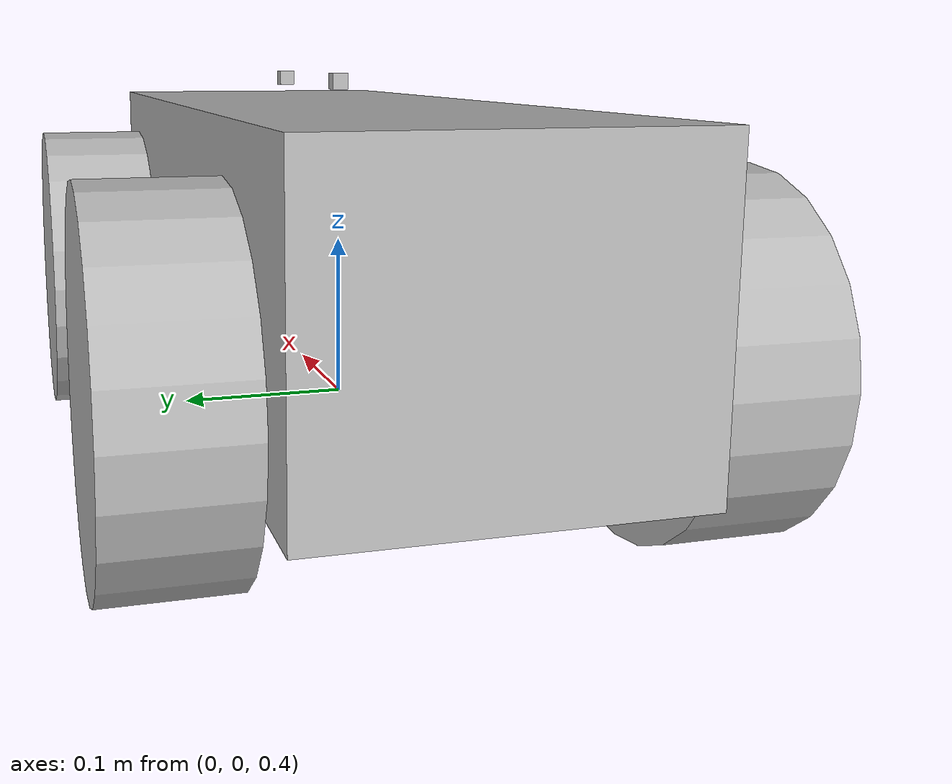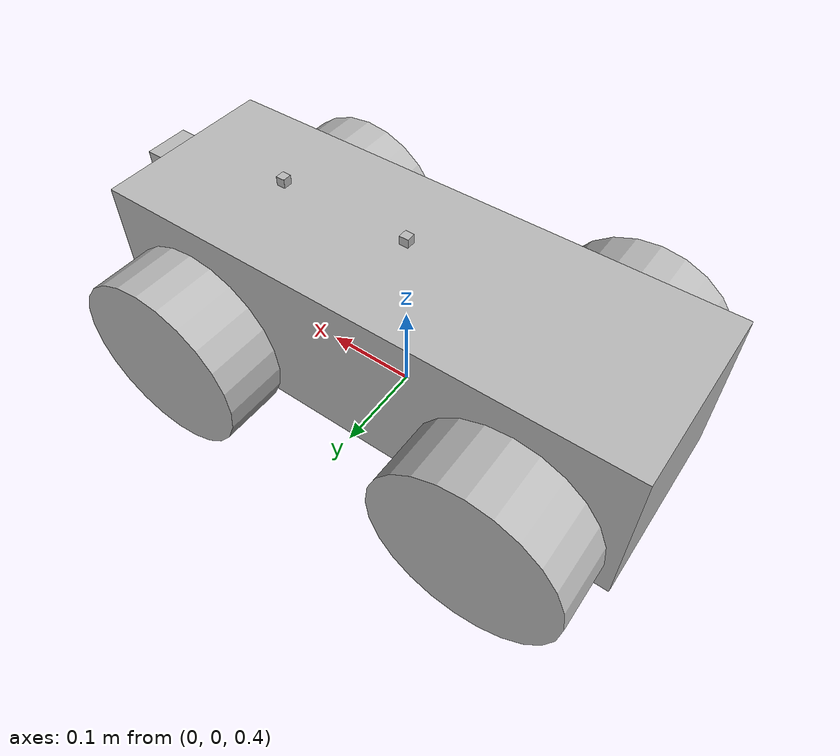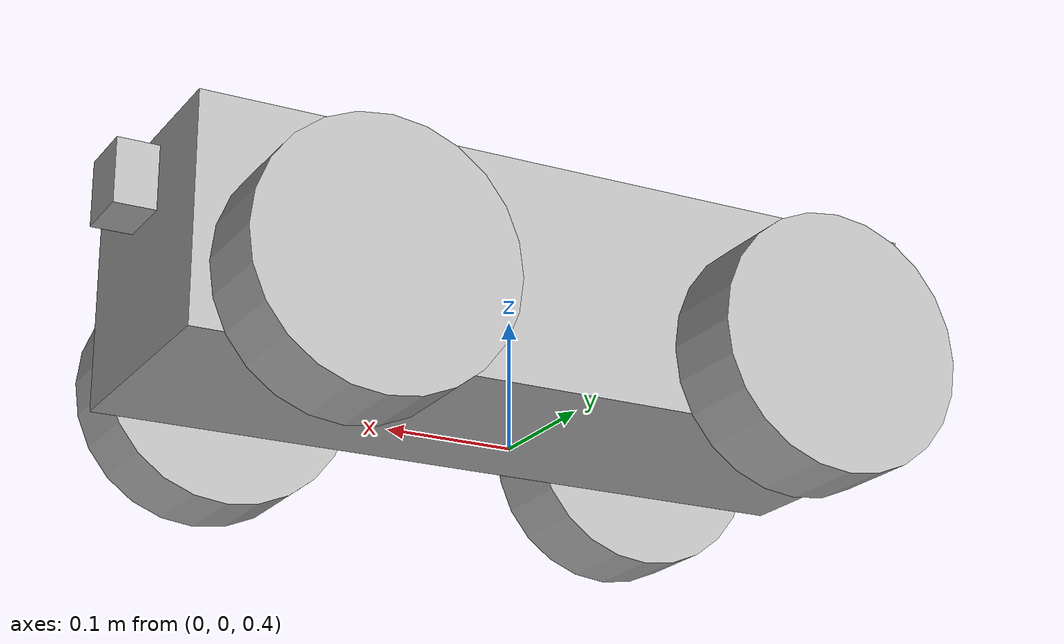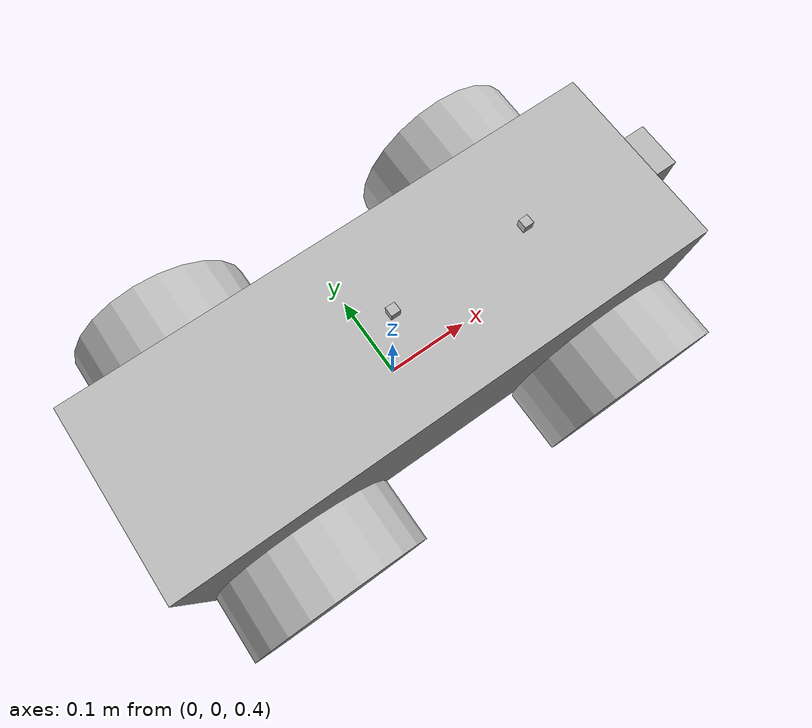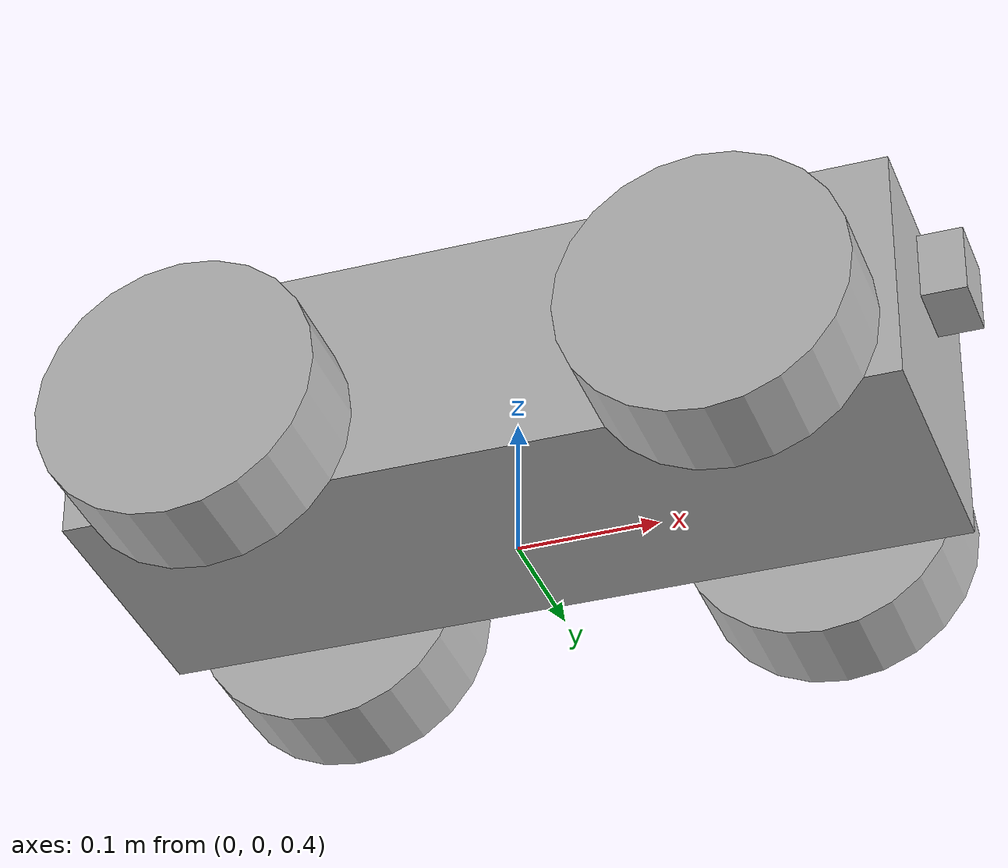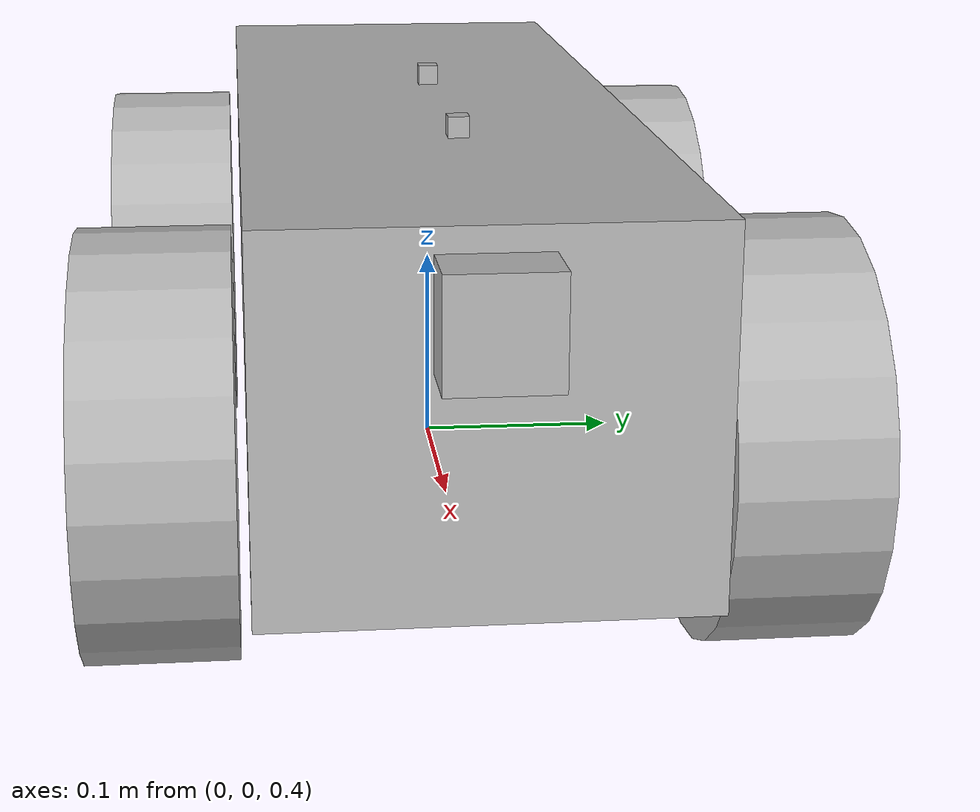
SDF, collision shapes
<?xml version="1.0"?>
<sdf version="1.10">
  <model name="robot_car" canonical_link='base_link'>
    <!-- ======================== LINKS ======================== -->
    <!-- Chassis -->
    <link name="base_link">
      <pose relative_to='__model__'>0 0 0 0 0 0</pose>
    </link>

    <!-- Chassis -->
    <link name="chassis">
      <pose relative_to="base_link">0.0 0.0 0.5 0 0 0</pose>
      <!-- Inertial (example for 2.0 kg) -->
      <inertial>
        <mass>1.9</mass>
        <inertia>
          <ixx>0.0794</ixx>
          <ixy>0.0</ixy>
          <ixz>0.0</ixz>
          <iyy>0.0768</iyy>
          <iyz>0.0</iyz>
          <izz>0.0678</izz>
        </inertia>
      </inertial>
      <!-- Collision geometry (with demo friction settings) -->
      <collision name="chassis_collision">
        <geometry>
          <box>
            <size>0.586 0.202 0.173</size>
          </box>
        </geometry>
        <surface>
          <friction>
            <ode>
              <mu>50</mu>
            </ode>
            <bullet>
              <friction>1</friction>
              <rolling_friction>0.1</rolling_friction>
            </bullet>
          </friction>
        </surface>
      </collision>
      <!-- Visual geometry (unchanged) -->
      <visual name="chassis_visual">
        <pose>0 0 -0.62 1.5707 0 -1.5707</pose>
        <geometry>
          <mesh>
            <uri>meshes/f1.obj</uri>
            <scale>1.0 1.0 1.0</scale>
          </mesh>
        </geometry>
      </visual>
    </link>
    <link name='base_footprint'>
      <pose relative_to='base_link'>0 0 0 0 0 0</pose>
    </link>
    <joint name='base_footprint_joint' type='fixed'>
      <parent>base_link</parent>
      <child>base_footprint</child>
    </joint>
    <!-- Rear Wheels -->
    <link name="rear_left_wheel">
      <pose relative_to="chassis">-0.182 0.141 -0.040 -1.5707 0 0</pose>
      <inertial>
        <mass>0.07</mass>
        <inertia>
          <ixx>0.00545</ixx>
          <ixy>0.0</ixy>
          <ixz>0.0</ixz>
          <iyy>0.00545</iyy>
          <iyz>0.0</iyz>
          <izz>0.00919</izz>
        </inertia>
      </inertial>
      <collision name="left_wheel_collision">
        <geometry>
          <cylinder>
            <radius>0.1</radius>
            <length>0.07</length>
          </cylinder>
        </geometry>
        <surface>
          <friction>
            <ode>
              <mu>0.5</mu>
              <mu2>1.0</mu2>
              <fdir1>0 0 1</fdir1>
            </ode>
            <bullet>
              <friction>0.5</friction>
              <friction2>1</friction2>
              <rolling_friction>0.1</rolling_friction>
            </bullet>
          </friction>
        </surface>
      </collision>
    </link>

    <link name="rear_right_wheel">
      <pose relative_to="chassis">-0.182 -0.141 -0.040 -1.5707 0 0</pose>
      <inertial>
        <mass>0.07</mass>
        <inertia>
          <ixx>0.00545</ixx>
          <ixy>0.0</ixy>
          <ixz>0.0</ixz>
          <iyy>0.00545</iyy>
          <iyz>0.0</iyz>
          <izz>0.00919</izz>
        </inertia>
      </inertial>
      <collision name="right_wheel_collision">
        <geometry>
          <cylinder>
            <radius>0.1</radius>
            <length>0.07</length>
          </cylinder>
        </geometry>
        <surface>
          <friction>
            <ode>
              <mu>0.5</mu>
              <mu2>1.0</mu2>
              <fdir1>0 0 1</fdir1>
            </ode>
            <bullet>
              <friction>0.5</friction>
              <friction2>1</friction2>
              <rolling_friction>0.1</rolling_friction>
            </bullet>
          </friction>
        </surface>
      </collision>
    </link>

    <!-- Front Wheels -->
    <link name="left_front_wheel">
      <pose relative_to="chassis">0.182 0.141 -0.040 -1.5707 0 0</pose>
      <inertial>
        <mass>0.07</mass>
        <inertia>
          <ixx>0.00545</ixx>
          <ixy>0.0</ixy>
          <ixz>0.0</ixz>
          <iyy>0.00545</iyy>
          <iyz>0.0</iyz>
          <izz>0.00919</izz>
        </inertia>
      </inertial>
      <collision name="left_front_wheel_collision">
        <geometry>
          <cylinder>
            <radius>0.1</radius>
            <length>0.07</length>
          </cylinder>
        </geometry>
        <surface>
          <friction>
            <ode>
              <mu>0.5</mu>
              <mu2>1.0</mu2>
              <fdir1>0 0 1</fdir1>
            </ode>
            <bullet>
              <friction>0.5</friction>
              <friction2>1</friction2>
              <rolling_friction>0.1</rolling_friction>
            </bullet>
          </friction>
        </surface>
      </collision>
    </link>

    <link name="right_front_wheel">
      <pose relative_to="chassis">0.182 -0.141 -0.040 -1.5707 0 0</pose>
      <inertial>
        <mass>0.07</mass>
        <inertia>
          <ixx>0.00545</ixx>
          <ixy>0.0</ixy>
          <ixz>0.0</ixz>
          <iyy>0.00545</iyy>
          <iyz>0.0</iyz>
          <izz>0.00919</izz>
        </inertia>
      </inertial>
      <collision name="right_front_wheel_collision">
        <geometry>
          <cylinder>
            <radius>0.1</radius>
            <length>0.07</length>
          </cylinder>
        </geometry>
        <surface>
          <friction>
            <ode>
              <mu>0.5</mu>
              <mu2>1.0</mu2>
              <fdir1>0 0 1</fdir1>
            </ode>
            <bullet>
              <friction>0.5</friction>
              <friction2>1</friction2>
              <rolling_friction>0.1</rolling_friction>
            </bullet>
          </friction>
        </surface>
      </collision>
    </link>

    <!-- ======================== JOINTS ======================== -->
    <!-- Steering links & joints for front wheels -->
    <link name="front_left_wheel_steering_link">
      <pose relative_to="chassis">0.182 0.141 -0.040 0 0 0</pose>
      <inertial>
        <mass>0.01</mass>
        <inertia>
          <ixx>0.00153</ixx>
          <iyy>0.0025</iyy>
          <izz>0.00153</izz>
        </inertia>
      </inertial>
    </link>

    <link name="front_right_wheel_steering_link">
      <pose relative_to="chassis">0.182 -0.141 -0.040 0 0 0</pose>
      <inertial>
        <mass>0.01</mass>
        <inertia>
          <ixx>0.00153</ixx>
          <iyy>0.0025</iyy>
          <izz>0.00153</izz>
        </inertia>
      </inertial>
    </link>

    <joint name="front_left_wheel_steering_joint" type="revolute">
      <child>front_left_wheel_steering_link</child>
      <parent>chassis</parent>
      <pose>0 0 0 0 0 0</pose>
      <axis>
        <xyz>0 0 1</xyz>
        <limit>
          <lower>-0.6</lower>
          <upper>0.6</upper>
          <velocity>1.0</velocity>
          <effort>25</effort>
        </limit>
        <use_parent_model_frame>1</use_parent_model_frame>
      </axis>
    </joint>

    <joint name="front_right_wheel_steering_joint" type="revolute">
      <parent>chassis</parent>
      <child>front_right_wheel_steering_link</child>
      <pose>0 0 0 0 0 0</pose>
      <axis>
        <xyz>0 0 1</xyz>
        <limit>
          <lower>-0.6</lower>
          <upper>0.6</upper>
          <velocity>1.0</velocity>
          <effort>25</effort>
        </limit>
        <use_parent_model_frame>1</use_parent_model_frame>
      </axis>
    </joint>

    <!-- Front wheel joints: attach wheels to steering links -->
    <joint name="front_left_wheel_joint" type="revolute">
      <parent>front_left_wheel_steering_link</parent>
      <child>left_front_wheel</child>
      <pose>0 0 0 0 0 0</pose>
      <axis>
        <xyz>0 0 1</xyz>
        <limit>
          <lower>-1.79769e+308</lower>
          <upper>1.79769e+308</upper>
        </limit>
      </axis>
    </joint>

    <!-- Corrected: Use the existing link name "right_front_wheel" -->
    <joint name="front_right_wheel_joint" type="revolute">
      <parent>front_right_wheel_steering_link</parent>
      <child>right_front_wheel</child>
      <pose>0 0 0 0 0 0</pose>
      <axis>
        <xyz>0 0 1</xyz>
        <limit>
          <lower>-1.79769e+308</lower>
          <upper>1.79769e+308</upper>
        </limit>
      </axis>
    </joint>

    <!-- Rear wheel joints: attach rear wheels directly to chassis -->
    <joint name="rear_left_wheel_joint" type="revolute">
      <parent>chassis</parent>
      <child>rear_left_wheel</child>
      <pose>0 0 0 0 0 0</pose>
      <axis>
        <xyz>0 0 1</xyz>
        <limit>
          <lower>-1.79769e+308</lower>
          <upper>1.79769e+308</upper>
        </limit>
      </axis>
      <parent>chassis</parent>
      <child>rear_left_wheel_joint</child>
    </joint>

    <joint name="rear_right_wheel_joint" type="revolute">
      <parent>chassis</parent>
      <child>rear_right_wheel</child>
      <pose>0 0 0 0 0 0</pose>
      <axis>
        <xyz>0 0 1</xyz>
        <limit>
          <lower>-1.79769e+308</lower>
          <upper>1.79769e+308</upper>
        </limit>
      </axis>
    </joint>

    <!-- ======================== ACKERMANN STEERING PLUGIN ======================== -->
    <plugin filename="gz-sim-ackermann-steering-system" name="gz::sim::systems::AckermannSteering">
      <left_joint>front_left_wheel_joint</left_joint>
      <left_joint>rear_left_wheel_joint</left_joint>
      <right_joint>front_right_wheel_joint</right_joint>
      <right_joint>rear_right_wheel_joint</right_joint>
      <left_steering_joint>front_left_wheel_steering_joint</left_steering_joint>
      <right_steering_joint>front_right_wheel_steering_joint</right_steering_joint>
      <!-- Updated parameters for your small vehicle: -->
      <kingpin_width>0.282</kingpin_width>
      <steering_limit>0.5</steering_limit>
      <wheel_base>0.364</wheel_base>
      <wheel_separation>0.282</wheel_separation>
      <wheel_radius>0.1</wheel_radius>
      <min_velocity>-1</min_velocity>
      <max_velocity>1</max_velocity>
      <min_acceleration>-3</min_acceleration>
      <max_acceleration>3</max_acceleration>
      <topic>cmd_vel</topic>
      <odom_publish_frequency>30</odom_publish_frequency>
      <odom_topic>odom</odom_topic>
      <tf_topic>tf</tf_topic>
      <frame_id>odom</frame_id>
      <child_frame_id>base_link</child_frame_id>    </plugin>

      <!-- Keyboard Triggered Publishers -->
      <!-- Moving Forward -->
    <plugin filename="gz-sim-triggered-publisher-system" name="gz::sim::systems::TriggeredPublisher">
      <input type="gz.msgs.Int32" topic="/keyboard/keypress">
        <match field="data">16777235</match>
      </input>
      <output type="gz.msgs.Twist" topic="/cmd_vel">
        linear: {x: 0.5}, angular: {z: 0.0}
      </output>
    </plugin>

    <!-- Moving Backward -->
    <plugin filename="gz-sim-triggered-publisher-system" name="gz::sim::systems::TriggeredPublisher">
      <input type="gz.msgs.Int32" topic="/keyboard/keypress">
        <match field="data">16777237</match>
      </input>
      <output type="gz.msgs.Twist" topic="/cmd_vel">
        linear: {x: -0.5}, angular: {z: 0.0}
      </output>
    </plugin>

    <!-- Moving Left -->
    <plugin filename="gz-sim-triggered-publisher-system" name="gz::sim::systems::TriggeredPublisher">
      <input type="gz.msgs.Int32" topic="/keyboard/keypress">
        <match field="data">16777234</match>
      </input>
      <output type="gz.msgs.Twist" topic="/cmd_vel">
        linear: {x: 0.5}, angular: {z: 0.5}
      </output>
    </plugin>

    <!-- Moving Right -->
    <plugin filename="gz-sim-triggered-publisher-system" name="gz::sim::systems::TriggeredPublisher">
      <input type="gz.msgs.Int32" topic="/keyboard/keypress">
        <match field="data">16777236</match>
      </input>
      <output type="gz.msgs.Twist" topic="/cmd_vel">
        linear: {x: 0.5}, angular: {z: -0.5}
      </output>
    </plugin>

    <!-- Stopping -->
    <plugin filename="gz-sim-triggered-publisher-system" name="gz::sim::systems::TriggeredPublisher">
      <input type="gz.msgs.Int32" topic="/keyboard/keypress">
        <match field="data">48</match>
      </input>
      <output type="gz.msgs.Twist" topic="/cmd_vel">
        linear: {x: 0.0}, angular: {z: 0.0}
      </output>
    </plugin>
    <!-- ======================== SENSORS (Mounted on Top & Front) ======================== -->
    <link name="camera_body">
      <pose relative_to="chassis">0.3 0 0.05 0 0 0</pose>
      <inertial>
        <mass>0.1</mass>
        <inertia>
          <ixx>0.000166667</ixx>
          <iyy>0.000166667</iyy>
          <izz>0.000166667</izz>
        </inertia>
      </inertial>
      <collision name="collision">
        <geometry>
          <box>
            <size>0.05 0.05 0.05</size>
          </box>
        </geometry>
      </collision>
      <visual name="visual">
        <geometry>
          <box>
            <size>0.05 0.05 0.05</size>
          </box>
        </geometry>
      </visual>
      <sensor name="camera" type="camera">
        <camera>
          <optical_frame_id>camera</optical_frame_id>
          <horizontal_fov>1.047</horizontal_fov>
          <image>
            <width>320</width>
            <height>240</height>
          </image>
          <clip>
            <near>0.1</near>
            <far>100</far>
          </clip>
        </camera>
        <always_on>1</always_on>
        <update_rate>30</update_rate>
        <visualize>true</visualize>
        <topic>camera</topic>
      </sensor>
    </link>
    <link name = 'camera'>
      <pose relative_to='camera_body'>0.01 0 0 1.5708 3.141 1.5707</pose>
    </link>
    <joint name='camera_optical_joint' type='fixed'>
      <parent>camera_body</parent>
      <child>camera</child>
    </joint>
    <joint name="camera_joint" type="fixed">
      <parent>chassis</parent>
      <child>camera_body</child>
    </joint>

    <link name="gps_link">
      <pose relative_to="chassis">0 0 0.1 0 0 0</pose>
      <inertial>
        <mass>0.1</mass>
        <inertia>
          <ixx>0.000166667</ixx>
          <iyy>0.000166667</iyy>
          <izz>0.000166667</izz>
        </inertia>
      </inertial>
      <collision name="collision">
        <geometry>
          <box>
            <size>0.01 0.01 0.01</size>
          </box>
        </geometry>
      </collision>
      <visual name="visual">
        <geometry>
          <box>
            <size>0.01 0.01 0.01</size>
          </box>
        </geometry>
      </visual>
      <sensor name="navsat_sensor" type="navsat">
        <always_on>1</always_on>
        <update_rate>30</update_rate>
        <topic>navsat</topic>
        <gz_frame_id>gps</gz_frame_id>
      </sensor>
    </link>
    <joint name="gps_joint" type="fixed">
      <parent>chassis</parent>
      <child>gps_link</child>
    </joint>

    <!-- IMU sensor (new) -->
    <link name="imu_link">
      <!-- Adjust the pose relative to chassis as needed -->
      <pose relative_to="chassis">-0.15 0 0.32 0 0 0</pose>
      <sensor name="imu_sensor" type="imu">
        <always_on>1</always_on>
        <update_rate>50</update_rate>
        <visualize>true</visualize>
        <topic>imu</topic>
        <gz_frame_id>imu</gz_frame_id>
        <imu>
          <!-- Noise parameters or biases can be added here if desired -->
          <angular_velocity>
            <x>0.0</x>
            <y>0.0</y>
            <z>0.0</z>
          </angular_velocity>
          <linear_acceleration>
            <x>0.0</x>
            <y>0.0</y>
            <z>0.0</z>
          </linear_acceleration>
          <orientation>
            <x>0.0</x>
            <y>0.0</y>
            <z>0.0</z>
            <w>1.0</w>
          </orientation>
        </imu>
      </sensor>
    </link>
    <joint name="imu_joint" type="fixed">
      <parent>chassis</parent>
      <child>imu_link</child>
      <pose>0 0 0 0 0 0</pose>
    </joint>

    <link name="lidar">
      <pose relative_to="chassis">0.15 0 0.1 0 0 0</pose>
      <inertial>
        <mass>0.01</mass>
        <inertia>
          <ixx>0.000166667</ixx>
          <iyy>0.000166667</iyy>
          <izz>0.000166667</izz>
        </inertia>
      </inertial>
      <collision name="collision">
        <geometry>
          <box>
            <size>0.01 0.01 0.01</size>
          </box>
        </geometry>
      </collision>
      <visual name="visual">
        <geometry>
          <cylinder>
            <radius>0.05</radius>
            <length>0.05</length>
          </cylinder>
        </geometry>
      </visual>
      <sensor name="gpu_lidar" type="gpu_lidar">
        <pose relative_to="lidar">0 0 0.0 0 0 0</pose>
        <topic>scan</topic>
        <gz_frame_id>lidar</gz_frame_id>
        <update_rate>10</update_rate>
        <lidar>
          <scan>
            <horizontal>
              <samples>1081</samples>
              <resolution>1</resolution>
              <min_angle>-2.356</min_angle>
              <max_angle>2.356</max_angle>
            </horizontal>
          </scan>
          <range>
            <min>0.05</min>
            <max>10.0</max>
            <resolution>0.01</resolution>
          </range>
        </lidar>
        <alwaysOn>1</alwaysOn>
        <visualize>true</visualize>
      </sensor>
    </link>
    <joint name="lidar_joint" type="fixed">
      <parent>chassis</parent>
      <child>lidar</child>
    </joint>
  </model>
</sdf>
